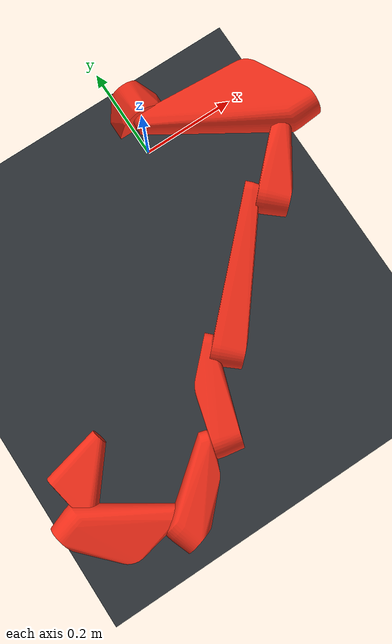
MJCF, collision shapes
<?xml version='1.0' encoding='utf-8'?>
<mujoco model="exo7">
  <compiler angle="radian" autolimits="true" balanceinertia="true" inertiafromgeom="false" />
  <option timestep="0.002" gravity="0 0 -9.81" integrator="implicitfast">
    <flag multiccd="enable" />
  </option>
  <visual>
    <global offwidth="960" offheight="720" />
  </visual>
  <default>
    <joint damping="0" armature="0" />
    <geom contype="0" conaffinity="0" group="1" />
  </default>
  <asset>
    <mesh name="base_link_mesh_1" file="exo7_preview_sim_assets/base_link.STL" />
    <mesh name="base_link_collision_mesh_1" file="exo7_preview_sim_assets/base_link_1_collision_hull.stl" />
    <material name="base_link_material" rgba="0.76 0.78 0.80 1" specular="0.25" shininess="0.35" />
    <mesh name="link1_mesh_1" file="exo7_preview_sim_assets/link1.STL" />
    <mesh name="link1_collision_mesh_1" file="exo7_preview_sim_assets/link1_1_collision_hull.stl" />
    <material name="link1_material" rgba="0.18 0.42 0.62 1" specular="0.25" shininess="0.35" />
    <mesh name="link2_mesh_1" file="exo7_preview_sim_assets/link2.STL" />
    <mesh name="link2_collision_mesh_1" file="exo7_preview_sim_assets/link2_1_collision_hull.stl" />
    <material name="link2_material" rgba="0.82 0.25 0.22 1" specular="0.25" shininess="0.35" />
    <mesh name="link3_mesh_1" file="exo7_preview_sim_assets/link3.STL" />
    <mesh name="link3_collision_mesh_1" file="exo7_preview_sim_assets/link3_1_collision_hull.stl" />
    <material name="link3_material" rgba="0.32 0.56 0.39 1" specular="0.25" shininess="0.35" />
    <mesh name="link4_mesh_1" file="exo7_preview_sim_assets/link4_part1.stl" />
    <mesh name="link4_mesh_2" file="exo7_preview_sim_assets/link4_part2.stl" />
    <mesh name="link4_collision_mesh_1" file="exo7_preview_sim_assets/link4_1_collision_hull.stl" />
    <material name="link4_material" rgba="0.76 0.78 0.80 1" specular="0.25" shininess="0.35" />
    <mesh name="link5_mesh_1" file="exo7_preview_sim_assets/link5_part1.stl" />
    <mesh name="link5_mesh_2" file="exo7_preview_sim_assets/link5_part2.stl" />
    <mesh name="link5_collision_mesh_1" file="exo7_preview_sim_assets/link5_1_collision_hull.stl" />
    <material name="link5_material" rgba="0.18 0.42 0.62 1" specular="0.25" shininess="0.35" />
    <mesh name="link6_mesh_1" file="exo7_preview_sim_assets/link6_part1.stl" />
    <mesh name="link6_mesh_2" file="exo7_preview_sim_assets/link6_part2.stl" />
    <mesh name="link6_collision_mesh_1" file="exo7_preview_sim_assets/link6_1_collision_hull.stl" />
    <material name="link6_material" rgba="0.82 0.25 0.22 1" specular="0.25" shininess="0.35" />
    <mesh name="link7_mesh_1" file="exo7_preview_sim_assets/link7.STL" />
    <mesh name="link7_collision_mesh_1" file="exo7_preview_sim_assets/link7_1_collision_hull.stl" />
    <material name="link7_material" rgba="0.32 0.56 0.39 1" specular="0.25" shininess="0.35" />
  </asset>
  <worldbody>
    <light name="key" pos="0 -2 3" dir="0 0.5 -1" diffuse="0.8 0.8 0.8" />
    <light name="fill" pos="1 2 2" dir="-0.4 -0.5 -1" diffuse="0.45 0.45 0.45" />
    <geom name="floor" type="plane" size="3 3 0.1" pos="0 0 -0.55" rgba="0.18 0.20 0.22 1" contype="1" conaffinity="1" margin="0.005" gap="0.005" group="2" />
    <body name="base_link" pos="0 0 0.2" quat="0.707105482511 0.707108079859 0 0">
      <inertial pos="-2.76522939481e-05 -0.00626400392937 -0.0205338832218" mass="0.158842788893151" fullinertia="5.54652310554e-05 7.62543275606e-05 9.62565645866e-05 2.59684158939e-08 -1.91637415591e-09 -4.14314945804e-06" />
      <geom name="base_link_visual_1" type="mesh" mesh="base_link_mesh_1" material="base_link_material" pos="0 0 0" quat="1 0 0 0" contype="0" conaffinity="0" group="1" />
      <geom name="base_link_collision_1" type="mesh" mesh="base_link_collision_mesh_1" pos="0 0 0" quat="1 0 0 0" contype="1" conaffinity="1" margin="0.005" gap="0.005" group="4" rgba="0.95 0.18 0.10 0" />
      <site name="base_link_frame" type="sphere" size="0.008" rgba="0.95 0.82 0.18 1" group="3" />
      <body name="link1" pos="0 0 0" quat="1 0 0 0">
        <joint name="joint1" type="hinge" axis="0 0 1" limited="false" damping="0.4" armature="0.002" frictionloss="0.15" />
        <inertial pos="0.192543499762 -9.19221949391e-06 0.0960725879689" mass="0.223146328060751" fullinertia="9.5841749296e-05 0.000155145529079 0.000137025472039 9.10803390733e-09 -1.00270837592e-05 1.93841799728e-08" />
        <geom name="link1_visual_1" type="mesh" mesh="link1_mesh_1" material="link1_material" pos="0 0 0" quat="1 0 0 0" contype="0" conaffinity="0" group="1" />
        <geom name="link1_collision_1" type="mesh" mesh="link1_collision_mesh_1" pos="0 0 0" quat="1 0 0 0" contype="1" conaffinity="1" margin="0.005" gap="0.005" group="4" rgba="0.95 0.18 0.10 0" />
        <site name="link1_frame" type="sphere" size="0.008" rgba="0.95 0.82 0.18 1" group="3" />
        <body name="link2" pos="0.217 0 0.143" quat="0.707105482511 0 -0.707108079859 0">
          <joint name="joint2" type="hinge" axis="0 0 1" limited="false" damping="0.4" armature="0.002" frictionloss="0.15" />
          <inertial pos="0.0863857199363 -1.1738382372e-05 0.0898358709478" mass="0.1747501382594" fullinertia="6.93110438363e-05 7.08196541227e-05 6.87606880985e-05 2.01471665279e-08 -2.11345670842e-05 7.26637652826e-09" />
          <geom name="link2_visual_1" type="mesh" mesh="link2_mesh_1" material="link2_material" pos="0 0 0" quat="1 0 0 0" contype="0" conaffinity="0" group="1" />
          <geom name="link2_collision_1" type="mesh" mesh="link2_collision_mesh_1" pos="0 0 0" quat="1 0 0 0" contype="1" conaffinity="1" margin="0.005" gap="0.005" group="4" rgba="0.95 0.18 0.10 0" />
          <site name="link2_frame" type="sphere" size="0.008" rgba="0.95 0.82 0.18 1" group="3" />
          <body name="link3" pos="0.093408 0 0.1236" quat="0.923879181092 0 -0.382684280765 0">
            <joint name="joint3" type="hinge" axis="0 0 1" limited="false" damping="0.4" armature="0.002" frictionloss="0.15" />
            <inertial pos="0.217004642679 2.83916312927e-05 0.00764645069754" mass="0.195695773240529" fullinertia="5.22557069199e-05 0.000218097395443 0.000238890923335 -4.53524188604e-08 -2.08112687785e-06 -5.79147294733e-09" />
            <geom name="link3_visual_1" type="mesh" mesh="link3_mesh_1" material="link3_material" pos="0 0 0" quat="1 0 0 0" contype="0" conaffinity="0" group="1" />
            <geom name="link3_collision_1" type="mesh" mesh="link3_collision_mesh_1" pos="0 0 0" quat="1 0 0 0" contype="1" conaffinity="1" margin="0.005" gap="0.005" group="4" rgba="0.95 0.18 0.10 0" />
            <site name="link3_frame" type="sphere" size="0.008" rgba="0.95 0.82 0.18 1" group="3" />
            <body name="link4" pos="0.28 0 0.02525" quat="1 0 0 0">
              <joint name="joint4" type="hinge" axis="0 0 1" limited="false" damping="0.4" armature="0.002" frictionloss="0.15" />
              <inertial pos="0.12147524619 3.04089991704e-05 -0.0342250620338" mass="0.166986707079527" fullinertia="5.10861078173e-05 7.72686179756e-05 9.01471064405e-05 6.9779713404e-08 1.65877290301e-05 -4.61760199067e-08" />
              <geom name="link4_visual_1" type="mesh" mesh="link4_mesh_1" material="link4_material" pos="0 0 0" quat="1 0 0 0" contype="0" conaffinity="0" group="1" />
              <geom name="link4_visual_2" type="mesh" mesh="link4_mesh_2" material="link4_material" pos="0 0 0" quat="1 0 0 0" contype="0" conaffinity="0" group="1" />
              <geom name="link4_collision_1" type="mesh" mesh="link4_collision_mesh_1" pos="0 0 0" quat="1 0 0 0" contype="1" conaffinity="1" margin="0.005" gap="0.005" group="4" rgba="0.95 0.18 0.10 0" />
              <site name="link4_frame" type="sphere" size="0.008" rgba="0.95 0.82 0.18 1" group="3" />
              <body name="link5" pos="0.15754 0 -0.030804" quat="0.96592566784 0 0.258819636443 0">
                <joint name="joint5" type="hinge" axis="0 0 1" limited="false" damping="0.4" armature="0.002" frictionloss="0.15" />
                <inertial pos="0.10226757507 3.09456472451e-05 0.0677487506851" mass="0.164079361843354" fullinertia="6.73397754765e-05 6.64626574943e-05 6.24705968424e-05 4.61750759704e-08 -1.72031156638e-05 6.97786745632e-08" />
                <geom name="link5_visual_1" type="mesh" mesh="link5_mesh_1" material="link5_material" pos="0 0 0" quat="1 0 0 0" contype="0" conaffinity="0" group="1" />
                <geom name="link5_visual_2" type="mesh" mesh="link5_mesh_2" material="link5_material" pos="0 0 0" quat="1 0 0 0" contype="0" conaffinity="0" group="1" />
                <geom name="link5_collision_1" type="mesh" mesh="link5_collision_mesh_1" pos="0 0 0" quat="1 0 0 0" contype="1" conaffinity="1" margin="0.005" gap="0.005" group="4" rgba="0.95 0.18 0.10 0" />
                <site name="link5_frame" type="sphere" size="0.008" rgba="0.95 0.82 0.18 1" group="3" />
                <body name="link6" pos="0.10546 0 0.094317" quat="0.866024791583 0 -0.500001060363 0">
                  <joint name="joint6" type="hinge" axis="0 0 1" limited="false" damping="0.4" armature="0.002" frictionloss="0.15" />
                  <inertial pos="0.102176943657 2.81709402693e-05 0.0902037061729" mass="0.180239914092338" fullinertia="8.60256737789e-05 8.11053180406e-05 6.13417260945e-05 5.09959760074e-09 -9.85407862845e-06 8.35176163929e-08" />
                  <geom name="link6_visual_1" type="mesh" mesh="link6_mesh_1" material="link6_material" pos="0 0 0" quat="1 0 0 0" contype="0" conaffinity="0" group="1" />
                  <geom name="link6_visual_2" type="mesh" mesh="link6_mesh_2" material="link6_material" pos="0 0 0" quat="1 0 0 0" contype="0" conaffinity="0" group="1" />
                  <geom name="link6_collision_1" type="mesh" mesh="link6_collision_mesh_1" pos="0 0 0" quat="1 0 0 0" contype="1" conaffinity="1" margin="0.005" gap="0.005" group="4" rgba="0.95 0.18 0.10 0" />
                  <site name="link6_frame" type="sphere" size="0.008" rgba="0.95 0.82 0.18 1" group="3" />
                  <body name="link7" pos="0.102 0 0.12168" quat="0.707105482511 0 -0.707108079859 0">
                    <joint name="joint7" type="hinge" axis="0 0 1" limited="false" damping="0.4" armature="0.002" frictionloss="0.15" />
                    <inertial pos="0.0556373148324 1.42355745247e-16 0.0443709660148" mass="0.11199016304375" fullinertia="0.000149273764531 0.000220568333963 8.7783329166e-05 -3.06329398917e-20 -5.79807500967e-05 -4.74943652813e-20" />
                    <geom name="link7_visual_1" type="mesh" mesh="link7_mesh_1" material="link7_material" pos="0 0 0" quat="1 0 0 0" contype="0" conaffinity="0" group="1" />
                    <geom name="link7_collision_1" type="mesh" mesh="link7_collision_mesh_1" pos="0 0 0" quat="1 0 0 0" contype="1" conaffinity="1" margin="0.005" gap="0.005" group="4" rgba="0.95 0.18 0.10 0" />
                    <site name="link7_frame" type="sphere" size="0.008" rgba="0.95 0.82 0.18 1" group="3" />
                  </body>
                </body>
              </body>
            </body>
          </body>
        </body>
      </body>
    </body>
  </worldbody>
  <contact>
    <exclude body1="base_link" body2="link1" />
    <exclude body1="link1" body2="link2" />
    <exclude body1="link2" body2="link3" />
    <exclude body1="link3" body2="link4" />
    <exclude body1="link4" body2="link5" />
    <exclude body1="link5" body2="link6" />
    <exclude body1="link6" body2="link7" />
  </contact>
  <actuator>
    <motor name="joint1_motor" joint="joint1" gear="1" />
    <motor name="joint2_motor" joint="joint2" gear="1" />
    <motor name="joint3_motor" joint="joint3" gear="1" />
    <motor name="joint4_motor" joint="joint4" gear="1" />
    <motor name="joint5_motor" joint="joint5" gear="1" />
    <motor name="joint6_motor" joint="joint6" gear="1" />
    <motor name="joint7_motor" joint="joint7" gear="1" />
  </actuator>
</mujoco>
